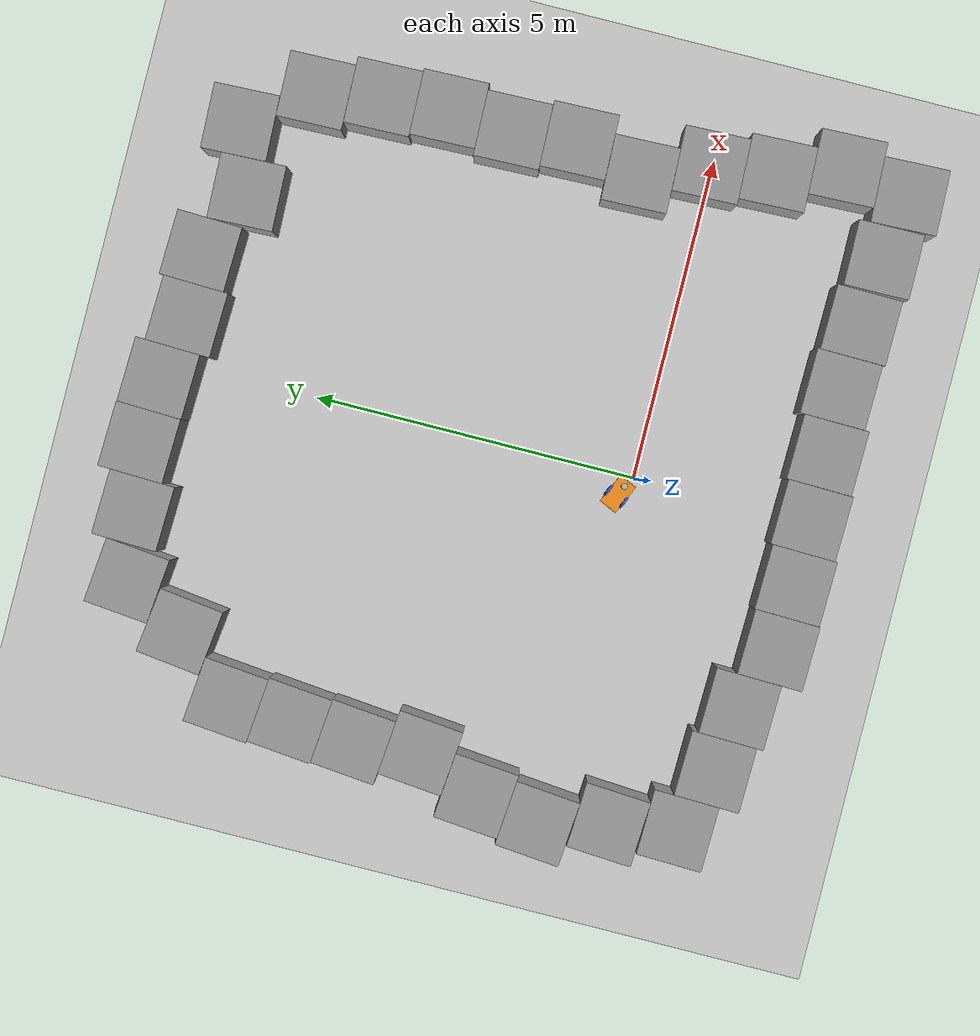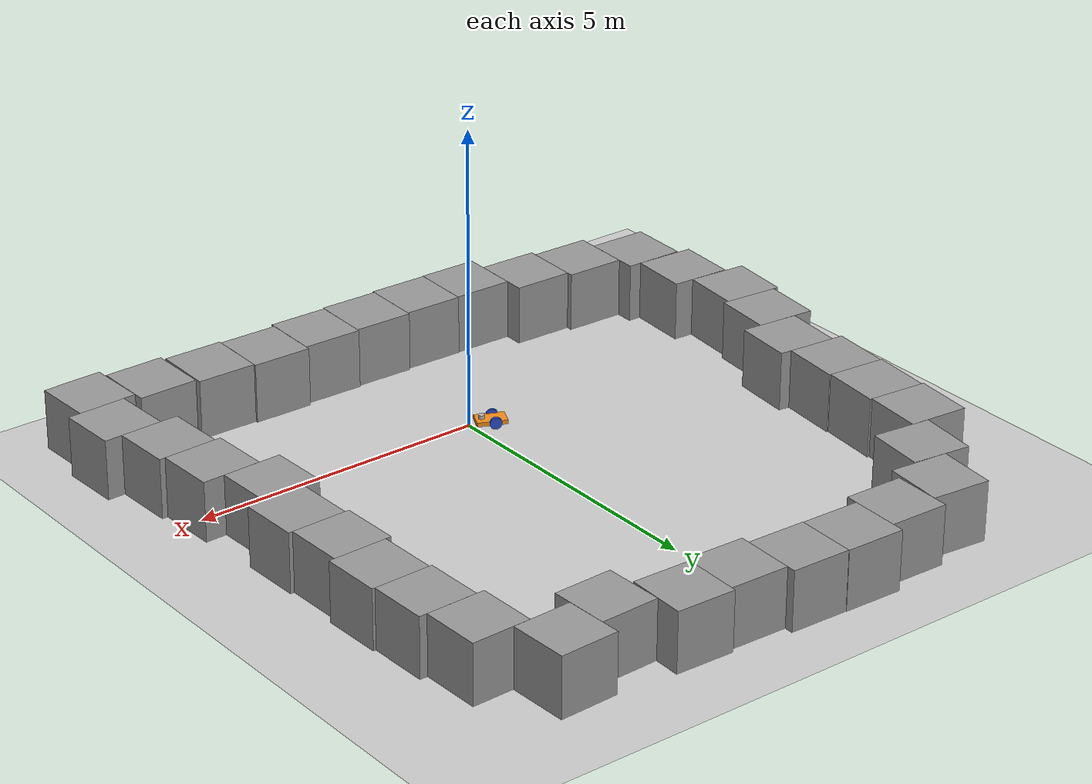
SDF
<sdf version="1.7">
 <world name="default">
  <light name="sun" type="directional">
   <pose>0 0 10 0 -0 0</pose>
   <diffuse>0.8 0.8 0.8 1</diffuse>
   <specular>0.2 0.2 0.2 1</specular>
   <attenuation>
    <range>1000</range>
    <constant>0.9</constant>
    <linear>0.01</linear>
    <quadratic>0.001</quadratic>
   </attenuation>
   <direction>-0.5 0.1 -0.9</direction>
   <spot><inner_angle>0</inner_angle><outer_angle>0</outer_angle><falloff>0</falloff></spot>
  </light>
  <model name="ground_plane">
   <static>1</static>
   <link name="link">
    <collision name="collision">
     <geometry><plane><normal>0 0 1</normal><size>100 100</size></plane></geometry>
     <surface>
      <contact><collide_bitmask>65535</collide_bitmask></contact>
      <friction><ode><mu>100</mu><mu2>50</mu2></ode></friction>
     </surface>
    </collision>
    <visual name="visual">
     <cast_shadows>0</cast_shadows>
     <geometry><plane><normal>0 0 1</normal><size>100 100</size></plane></geometry>
     <material>
      <script><uri>file://media/materials/scripts/gazebo.material</uri><name>Gazebo/Grey</name></script>
     </material>
    </visual>
   </link>
  </model>
  <gravity>0 0 -9.8</gravity>
  <magnetic_field>6e-06 2.3e-05 -4.2e-05</magnetic_field>
  <atmosphere type="adiabatic"/>
  <physics type="ode">
   <max_step_size>0.001</max_step_size>
   <real_time_factor>1</real_time_factor>
   <real_time_update_rate>1000</real_time_update_rate>
  </physics>
  <scene><ambient>0.4 0.4 0.4 1</ambient><background>0.7 0.7 0.7 1</background><shadows>1</shadows></scene>
  <spherical_coordinates>
   <surface_model>EARTH_WGS84</surface_model>
   <latitude_deg>0</latitude_deg>
   <longitude_deg>0</longitude_deg>
   <elevation>0</elevation>
   <heading_deg>0</heading_deg>
  </spherical_coordinates>
  <model name="myrobo">
   <link name="link_chassis">
    <inertial>
     <pose>0.025 0 0.091667 0 -0 0</pose>
     <mass>6</mass>
     <inertia>
      <ixx>0.0430833</ixx>
      <ixy>0</ixy>
      <ixz>0.00625</ixz>
      <iyy>0.1285</iyy>
      <iyz>0</iyz>
      <izz>0.126208</izz>
     </inertia>
    </inertial>
    <collision name="link_chassis_fixed_joint_lump__collision_chassis_collision">
     <geometry><box><size>0.5 0.3 0.07</size></box></geometry>
    </collision>
    <collision name="link_chassis_fixed_joint_lump__caster_front_collision_collision_1">
     <pose>0.35 0 -0.05 0 -0 0</pose>
     <geometry><sphere><radius>0.05</radius></sphere></geometry>
    </collision>
    <collision name="link_chassis_fixed_joint_lump__sensor_laser_collision_2">
     <pose>0.15 0 0.05 0 -0 0</pose>
     <geometry><cylinder><length>0.1</length><radius>0.05</radius></cylinder></geometry>
    </collision>
    <visual name="link_chassis_visual">
     <geometry><box><size>0.5 0.3 0.07</size></box></geometry>
     <material>
      <script><name>Gazebo/Orange</name><uri>file://media/materials/scripts/gazebo.material</uri></script>
     </material>
    </visual>
    <visual name="link_chassis_fixed_joint_lump__caster_front_visual_visual_1">
     <pose>0.2 0 -0.05 0 -0 0</pose>
     <geometry><sphere><radius>0.05</radius></sphere></geometry>
    </visual>
    <visual name="link_chassis_fixed_joint_lump__sensor_laser_visual_2">
     <pose>0.15 0 0.05 0 -0 0</pose>
     <geometry><cylinder><length>0.1</length><radius>0.05</radius></cylinder></geometry>
    </visual>
    <sensor name="head_hokuyo_sensor" type="ray">
     <visualize>1</visualize>
     <always_on>1</always_on>
     <update_rate>10</update_rate>
     <ray>
      <scan>
       <horizontal>
        <samples>10</samples>
        <resolution>1</resolution>
        <min_angle>-1.1781</min_angle>
        <max_angle>1.1781</max_angle>
       </horizontal>
       <vertical><samples>1</samples><min_angle>0</min_angle><max_angle>0</max_angle></vertical>
      </scan>
      <range><min>0.1</min><max>2</max><resolution>0.01</resolution></range>
      <noise><type>gaussian</type><mean>0</mean><stddev>0.01</stddev></noise>
     </ray>
     <plugin name="gazebo_ros_head_hokuyo_controller" filename="libgazebo_ros_laser.so">
      <topicName>/myrobo/laser_scan</topicName>
      <frameName>sensor_laser</frameName>
      <robotNamespace>/</robotNamespace>
     </plugin>
     <pose>0.15 0 0.05 0 -0 0</pose>
    </sensor>
   </link>
   <joint name="joint_left_wheel" type="revolute">
    <pose relative_to="link_chassis">-0.05 -0.15 0 0 -0 0</pose>
    <parent>link_chassis</parent>
    <child>link_left_wheel</child>
    <axis>
     <xyz>0 1 0</xyz>
     <limit><lower>-1e+16</lower><upper>1e+16</upper></limit>
     <dynamics><spring_reference>0</spring_reference><spring_stiffness>0</spring_stiffness></dynamics>
    </axis>
   </joint>
   <link name="link_left_wheel">
    <pose relative_to="joint_left_wheel">0 0 0 0 -0 0</pose>
    <inertial>
     <pose>0 0 0 -0 1.5707 1.5707</pose>
     <mass>0.2</mass>
     <inertia>
      <ixx>0.000526667</ixx>
      <ixy>0</ixy>
      <ixz>0</ixz>
      <iyy>0.000526667</iyy>
      <iyz>0</iyz>
      <izz>0.001</izz>
     </inertia>
    </inertial>
    <collision name="link_left_wheel_fixed_joint_lump__link_right_wheel_collision_collision">
     <pose>0 0 0 1.57089 1.57079 -3.14159</pose>
     <geometry><cylinder><length>0.04</length><radius>0.1</radius></cylinder></geometry>
    </collision>
    <visual name="link_left_wheel_visual_visual">
     <pose>0 0 0 1.57089 1.57079 -3.14159</pose>
     <geometry><cylinder><length>0.04</length><radius>0.1</radius></cylinder></geometry>
     <material>
      <script><name>Gazebo/Blue</name><uri>file://media/materials/scripts/gazebo.material</uri></script>
     </material>
    </visual>
   </link>
   <joint name="joint_right_wheel" type="revolute">
    <pose relative_to="link_chassis">-0.05 0.15 0 0 -0 0</pose>
    <parent>link_chassis</parent>
    <child>link_right_wheel</child>
    <axis>
     <xyz>0 1 0</xyz>
     <limit><lower>-1e+16</lower><upper>1e+16</upper></limit>
     <dynamics><spring_reference>0</spring_reference><spring_stiffness>0</spring_stiffness></dynamics>
    </axis>
   </joint>
   <link name="link_right_wheel">
    <pose relative_to="joint_right_wheel">0 0 0 0 -0 0</pose>
    <inertial>
     <pose>0 0 0 -0 1.5707 1.5707</pose>
     <mass>0.2</mass>
     <inertia>
      <ixx>0.000526667</ixx>
      <ixy>0</ixy>
      <ixz>0</ixz>
      <iyy>0.000526667</iyy>
      <iyz>0</iyz>
      <izz>0.001</izz>
     </inertia>
    </inertial>
    <collision name="link_right_wheel_collision_collision">
     <pose>0 0 0 1.57089 1.57079 -3.14159</pose>
     <geometry><cylinder><length>0.04</length><radius>0.1</radius></cylinder></geometry>
    </collision>
    <visual name="link_right_wheel_visual_visual">
     <pose>0 0 0 1.57089 1.57079 -3.14159</pose>
     <geometry><cylinder><length>0.04</length><radius>0.1</radius></cylinder></geometry>
     <material>
      <script><name>Gazebo/Blue</name><uri>file://media/materials/scripts/gazebo.material</uri></script>
     </material>
    </visual>
   </link>
   <static>0</static>
   <plugin name="differential_drive_controller" filename="libgazebo_ros_diff_drive.so">
    <alwaysOn>1</alwaysOn>
    <legacyMode>0</legacyMode>
    <updateRate>20</updateRate>
    <leftJoint>joint_left_wheel</leftJoint>
    <rightJoint>joint_right_wheel</rightJoint>
    <wheelSeparation>0.6</wheelSeparation>
    <wheelDiameter>0.2</wheelDiameter>
    <torque>0.1</torque>
    <commandTopic>cmd_vel</commandTopic>
    <odometryTopic>odom</odometryTopic>
    <odometryFrame>odom</odometryFrame>
    <publishOdomTF>1</publishOdomTF>
    <robotBaseFrame>link_chassis</robotBaseFrame>
    <publishTf>1</publishTf>
    <wheelAcceleration>0</wheelAcceleration>
    <wheelTorque>1</wheelTorque>
    <publishWheelTF>1</publishWheelTF>
    <robotNamespace>/</robotNamespace>
   </plugin>
   <pose>-0.286318 0.177923 0.099999 -4e-06 8e-06 -0.432792</pose>
  </model>
  <model name="unit_box">
   <pose>-5.17168 1.15338 0.5 0 -0 -0.091626</pose>
   <link name="link">
    <inertial>
     <mass>1</mass>
     <inertia>
      <ixx>0.166667</ixx>
      <ixy>0</ixy>
      <ixz>0</ixz>
      <iyy>0.166667</iyy>
      <iyz>0</iyz>
      <izz>0.166667</izz>
     </inertia>
    </inertial>
    <collision name="collision"><geometry><box><size>1 1 1</size></box></geometry></collision>
    <visual name="visual">
     <geometry><box><size>1 1 1</size></box></geometry>
     <material>
      <script><name>Gazebo/Grey</name><uri>file://media/materials/scripts/gazebo.material</uri></script>
     </material>
    </visual>
   </link>
  </model>
  <model name="unit_box_0">
   <pose>-4.75522 2.12006 0.5 -0 -0 -0.095774</pose>
   <link name="link">
    <inertial>
     <mass>1</mass>
     <inertia>
      <ixx>0.166667</ixx>
      <ixy>0</ixy>
      <ixz>0</ixz>
      <iyy>0.166667</iyy>
      <iyz>0</iyz>
      <izz>0.166667</izz>
     </inertia>
    </inertial>
    <collision name="collision"><geometry><box><size>1 1 1</size></box></geometry></collision>
    <visual name="visual">
     <geometry><box><size>1 1 1</size></box></geometry>
     <material>
      <script><name>Gazebo/Grey</name><uri>file://media/materials/scripts/gazebo.material</uri></script>
     </material>
    </visual>
   </link>
  </model>
  <model name="unit_box_1">
   <pose>-4.84401 3.1332 0.5 0 0 -0.095783</pose>
   <link name="link">
    <inertial>
     <mass>1</mass>
     <inertia>
      <ixx>0.166667</ixx>
      <ixy>0</ixy>
      <ixz>0</ixz>
      <iyy>0.166667</iyy>
      <iyz>0</iyz>
      <izz>0.166667</izz>
     </inertia>
    </inertial>
    <collision name="collision"><geometry><box><size>1 1 1</size></box></geometry></collision>
    <visual name="visual">
     <geometry><box><size>1 1 1</size></box></geometry>
     <material>
      <script><name>Gazebo/Grey</name><uri>file://media/materials/scripts/gazebo.material</uri></script>
     </material>
    </visual>
   </link>
  </model>
  <model name="unit_box_2">
   <pose>-4.77036 4.13076 0.5 0 0 -0.095844</pose>
   <link name="link">
    <inertial>
     <mass>1</mass>
     <inertia>
      <ixx>0.166667</ixx>
      <ixy>0</ixy>
      <ixz>0</ixz>
      <iyy>0.166667</iyy>
      <iyz>0</iyz>
      <izz>0.166667</izz>
     </inertia>
    </inertial>
    <collision name="collision"><geometry><box><size>1 1 1</size></box></geometry></collision>
    <visual name="visual">
     <geometry><box><size>1 1 1</size></box></geometry>
     <material>
      <script><name>Gazebo/Grey</name><uri>file://media/materials/scripts/gazebo.material</uri></script>
     </material>
    </visual>
   </link>
  </model>
  <model name="unit_box_3">
   <pose>-4.70687 5.12927 0.5 0 0 -0.095847</pose>
   <link name="link">
    <inertial>
     <mass>1</mass>
     <inertia>
      <ixx>0.166667</ixx>
      <ixy>0</ixy>
      <ixz>0</ixz>
      <iyy>0.166667</iyy>
      <iyz>0</iyz>
      <izz>0.166667</izz>
     </inertia>
    </inertial>
    <collision name="collision"><geometry><box><size>1 1 1</size></box></geometry></collision>
    <visual name="visual">
     <geometry><box><size>1 1 1</size></box></geometry>
     <material>
      <script><name>Gazebo/Grey</name><uri>file://media/materials/scripts/gazebo.material</uri></script>
     </material>
    </visual>
   </link>
  </model>
  <model name="unit_box_4">
   <pose>-3.88865 6.04913 0.499995 -0 -1e-05 -0.123498</pose>
   <link name="link">
    <inertial>
     <mass>1</mass>
     <inertia>
      <ixx>0.166667</ixx>
      <ixy>0</ixy>
      <ixz>0</ixz>
      <iyy>0.166667</iyy>
      <iyz>0</iyz>
      <izz>0.166667</izz>
     </inertia>
    </inertial>
    <collision name="collision"><geometry><box><size>1 1 1</size></box></geometry></collision>
    <visual name="visual">
     <geometry><box><size>1 1 1</size></box></geometry>
     <material>
      <script><name>Gazebo/Grey</name><uri>file://media/materials/scripts/gazebo.material</uri></script>
     </material>
    </visual>
   </link>
  </model>
  <model name="unit_box_5">
   <pose>-3.34251 7.00156 0.5 0 0 -0.098276</pose>
   <link name="link">
    <inertial>
     <mass>1</mass>
     <inertia>
      <ixx>0.166667</ixx>
      <ixy>0</ixy>
      <ixz>0</ixz>
      <iyy>0.166667</iyy>
      <iyz>0</iyz>
      <izz>0.166667</izz>
     </inertia>
    </inertial>
    <collision name="collision"><geometry><box><size>1 1 1</size></box></geometry></collision>
    <visual name="visual">
     <geometry><box><size>1 1 1</size></box></geometry>
     <material>
      <script><name>Gazebo/Grey</name><uri>file://media/materials/scripts/gazebo.material</uri></script>
     </material>
    </visual>
   </link>
  </model>
  <model name="unit_box_6">
   <pose>-2.30503 7.16888 0.499995 0 1e-05 -0.033636</pose>
   <link name="link">
    <inertial>
     <mass>1</mass>
     <inertia>
      <ixx>0.166667</ixx>
      <ixy>0</ixy>
      <ixz>0</ixz>
      <iyy>0.166667</iyy>
      <iyz>0</iyz>
      <izz>0.166667</izz>
     </inertia>
    </inertial>
    <collision name="collision"><geometry><box><size>1 1 1</size></box></geometry></collision>
    <visual name="visual">
     <geometry><box><size>1 1 1</size></box></geometry>
     <material>
      <script><name>Gazebo/Grey</name><uri>file://media/materials/scripts/gazebo.material</uri></script>
     </material>
    </visual>
   </link>
  </model>
  <model name="unit_box_7">
   <pose>-1.29895 7.33057 0.499995 0 -1e-05 -0.033381</pose>
   <link name="link">
    <inertial>
     <mass>1</mass>
     <inertia>
      <ixx>0.166667</ixx>
      <ixy>0</ixy>
      <ixz>0</ixz>
      <iyy>0.166667</iyy>
      <iyz>0</iyz>
      <izz>0.166667</izz>
     </inertia>
    </inertial>
    <collision name="collision"><geometry><box><size>1 1 1</size></box></geometry></collision>
    <visual name="visual">
     <geometry><box><size>1 1 1</size></box></geometry>
     <material>
      <script><name>Gazebo/Grey</name><uri>file://media/materials/scripts/gazebo.material</uri></script>
     </material>
    </visual>
   </link>
  </model>
  <model name="unit_box_8">
   <pose>-0.299756 7.28887 0.5 0 0 -0.033333</pose>
   <link name="link">
    <inertial>
     <mass>1</mass>
     <inertia>
      <ixx>0.166667</ixx>
      <ixy>0</ixy>
      <ixz>0</ixz>
      <iyy>0.166667</iyy>
      <iyz>0</iyz>
      <izz>0.166667</izz>
     </inertia>
    </inertial>
    <collision name="collision"><geometry><box><size>1 1 1</size></box></geometry></collision>
    <visual name="visual">
     <geometry><box><size>1 1 1</size></box></geometry>
     <material>
      <script><name>Gazebo/Grey</name><uri>file://media/materials/scripts/gazebo.material</uri></script>
     </material>
    </visual>
   </link>
  </model>
  <model name="unit_box_9">
   <pose>0.694834 7.10982 0.5 0 0 -0.03333</pose>
   <link name="link">
    <inertial>
     <mass>1</mass>
     <inertia>
      <ixx>0.166667</ixx>
      <ixy>0</ixy>
      <ixz>0</ixz>
      <iyy>0.166667</iyy>
      <iyz>0</iyz>
      <izz>0.166667</izz>
     </inertia>
    </inertial>
    <collision name="collision"><geometry><box><size>1 1 1</size></box></geometry></collision>
    <visual name="visual">
     <geometry><box><size>1 1 1</size></box></geometry>
     <material>
      <script><name>Gazebo/Grey</name><uri>file://media/materials/scripts/gazebo.material</uri></script>
     </material>
    </visual>
   </link>
  </model>
  <model name="unit_box_10">
   <pose>1.6966 7.14621 0.5 0 0 -0.033327</pose>
   <link name="link">
    <inertial>
     <mass>1</mass>
     <inertia>
      <ixx>0.166667</ixx>
      <ixy>0</ixy>
      <ixz>0</ixz>
      <iyy>0.166667</iyy>
      <iyz>0</iyz>
      <izz>0.166667</izz>
     </inertia>
    </inertial>
    <collision name="collision"><geometry><box><size>1 1 1</size></box></geometry></collision>
    <visual name="visual">
     <geometry><box><size>1 1 1</size></box></geometry>
     <material>
      <script><name>Gazebo/Grey</name><uri>file://media/materials/scripts/gazebo.material</uri></script>
     </material>
    </visual>
   </link>
  </model>
  <model name="unit_box_11">
   <pose>-5.34822 0.165385 0.499999 0 2e-06 -0.091626</pose>
   <link name="link">
    <inertial>
     <mass>1</mass>
     <inertia>
      <ixx>0.166667</ixx>
      <ixy>0</ixy>
      <ixz>0</ixz>
      <iyy>0.166667</iyy>
      <iyz>0</iyz>
      <izz>0.166667</izz>
     </inertia>
    </inertial>
    <collision name="collision"><geometry><box><size>1 1 1</size></box></geometry></collision>
    <visual name="visual">
     <geometry><box><size>1 1 1</size></box></geometry>
     <material>
      <script><name>Gazebo/Grey</name><uri>file://media/materials/scripts/gazebo.material</uri></script>
     </material>
    </visual>
   </link>
  </model>
  <model name="unit_box_12">
   <pose>-5.09663 -0.866579 0.499996 0 -9e-06 -0.063196</pose>
   <link name="link">
    <inertial>
     <mass>1</mass>
     <inertia>
      <ixx>0.166667</ixx>
      <ixy>0</ixy>
      <ixz>0</ixz>
      <iyy>0.166667</iyy>
      <iyz>0</iyz>
      <izz>0.166667</izz>
     </inertia>
    </inertial>
    <collision name="collision"><geometry><box><size>1 1 1</size></box></geometry></collision>
    <visual name="visual">
     <geometry><box><size>1 1 1</size></box></geometry>
     <material>
      <script><name>Gazebo/Grey</name><uri>file://media/materials/scripts/gazebo.material</uri></script>
     </material>
    </visual>
   </link>
  </model>
  <model name="unit_box_13">
   <pose>-4.93177 -1.88836 0.499995 -1e-05 -0 -0.029773</pose>
   <link name="link">
    <inertial>
     <mass>1</mass>
     <inertia>
      <ixx>0.166667</ixx>
      <ixy>0</ixy>
      <ixz>0</ixz>
      <iyy>0.166667</iyy>
      <iyz>0</iyz>
      <izz>0.166667</izz>
     </inertia>
    </inertial>
    <collision name="collision"><geometry><box><size>1 1 1</size></box></geometry></collision>
    <visual name="visual">
     <geometry><box><size>1 1 1</size></box></geometry>
     <material>
      <script><name>Gazebo/Grey</name><uri>file://media/materials/scripts/gazebo.material</uri></script>
     </material>
    </visual>
   </link>
  </model>
  <model name="unit_box_14">
   <pose>-3.94004 -2.21727 0.499997 6e-06 -0 -0.027617</pose>
   <link name="link">
    <inertial>
     <mass>1</mass>
     <inertia>
      <ixx>0.166667</ixx>
      <ixy>0</ixy>
      <ixz>0</ixz>
      <iyy>0.166667</iyy>
      <iyz>0</iyz>
      <izz>0.166667</izz>
     </inertia>
    </inertial>
    <collision name="collision"><geometry><box><size>1 1 1</size></box></geometry></collision>
    <visual name="visual">
     <geometry><box><size>1 1 1</size></box></geometry>
     <material>
      <script><name>Gazebo/Grey</name><uri>file://media/materials/scripts/gazebo.material</uri></script>
     </material>
    </visual>
   </link>
  </model>
  <model name="unit_box_15">
   <pose>-2.94315 -2.3436 0.5 -0 -0 -0.027618</pose>
   <link name="link">
    <inertial>
     <mass>1</mass>
     <inertia>
      <ixx>0.166667</ixx>
      <ixy>0</ixy>
      <ixz>0</ixz>
      <iyy>0.166667</iyy>
      <iyz>0</iyz>
      <izz>0.166667</izz>
     </inertia>
    </inertial>
    <collision name="collision"><geometry><box><size>1 1 1</size></box></geometry></collision>
    <visual name="visual">
     <geometry><box><size>1 1 1</size></box></geometry>
     <material>
      <script><name>Gazebo/Grey</name><uri>file://media/materials/scripts/gazebo.material</uri></script>
     </material>
    </visual>
   </link>
  </model>
  <model name="unit_box_16">
   <pose>-1.95148 -2.68545 0.49999 0 -0 -0.02615</pose>
   <link name="link">
    <inertial>
     <mass>1</mass>
     <inertia>
      <ixx>0.166667</ixx>
      <ixy>0</ixy>
      <ixz>0</ixz>
      <iyy>0.166667</iyy>
      <iyz>0</iyz>
      <izz>0.166667</izz>
     </inertia>
    </inertial>
    <collision name="collision"><geometry><box><size>1 1 1</size></box></geometry></collision>
    <visual name="visual">
     <geometry><box><size>1 1 1</size></box></geometry>
     <material>
      <script><name>Gazebo/Grey</name><uri>file://media/materials/scripts/gazebo.material</uri></script>
     </material>
    </visual>
   </link>
  </model>
  <model name="unit_box_17">
   <pose>-0.951216 -2.6973 0.49998 0 -0 -0.025674</pose>
   <link name="link">
    <inertial>
     <mass>1</mass>
     <inertia>
      <ixx>0.166667</ixx>
      <ixy>0</ixy>
      <ixz>0</ixz>
      <iyy>0.166667</iyy>
      <iyz>0</iyz>
      <izz>0.166667</izz>
     </inertia>
    </inertial>
    <collision name="collision"><geometry><box><size>1 1 1</size></box></geometry></collision>
    <visual name="visual">
     <geometry><box><size>1 1 1</size></box></geometry>
     <material>
      <script><name>Gazebo/Grey</name><uri>file://media/materials/scripts/gazebo.material</uri></script>
     </material>
    </visual>
   </link>
  </model>
  <model name="unit_box_18">
   <pose>0.049488 -2.68718 0.499996 -0 -7e-06 -0.025419</pose>
   <link name="link">
    <inertial>
     <mass>1</mass>
     <inertia>
      <ixx>0.166667</ixx>
      <ixy>0</ixy>
      <ixz>0</ixz>
      <iyy>0.166667</iyy>
      <iyz>0</iyz>
      <izz>0.166667</izz>
     </inertia>
    </inertial>
    <collision name="collision"><geometry><box><size>1 1 1</size></box></geometry></collision>
    <visual name="visual">
     <geometry><box><size>1 1 1</size></box></geometry>
     <material>
      <script><name>Gazebo/Grey</name><uri>file://media/materials/scripts/gazebo.material</uri></script>
     </material>
    </visual>
   </link>
  </model>
  <model name="unit_box_19">
   <pose>1.0514 -2.678 0.5 0 -0 -0.022515</pose>
   <link name="link">
    <inertial>
     <mass>1</mass>
     <inertia>
      <ixx>0.166667</ixx>
      <ixy>0</ixy>
      <ixz>0</ixz>
      <iyy>0.166667</iyy>
      <iyz>0</iyz>
      <izz>0.166667</izz>
     </inertia>
    </inertial>
    <collision name="collision"><geometry><box><size>1 1 1</size></box></geometry></collision>
    <visual name="visual">
     <geometry><box><size>1 1 1</size></box></geometry>
     <material>
      <script><name>Gazebo/Grey</name><uri>file://media/materials/scripts/gazebo.material</uri></script>
     </material>
    </visual>
   </link>
  </model>
  <model name="unit_box_20">
   <pose>2.05415 -2.62792 0.5 -0 -0 -0.019335</pose>
   <link name="link">
    <inertial>
     <mass>1</mass>
     <inertia>
      <ixx>0.166667</ixx>
      <ixy>0</ixy>
      <ixz>0</ixz>
      <iyy>0.166667</iyy>
      <iyz>0</iyz>
      <izz>0.166667</izz>
     </inertia>
    </inertial>
    <collision name="collision"><geometry><box><size>1 1 1</size></box></geometry></collision>
    <visual name="visual">
     <geometry><box><size>1 1 1</size></box></geometry>
     <material>
      <script><name>Gazebo/Grey</name><uri>file://media/materials/scripts/gazebo.material</uri></script>
     </material>
    </visual>
   </link>
  </model>
  <model name="unit_box_21">
   <pose>3.05456 -2.68429 0.5 -0 -0 -0.016708</pose>
   <link name="link">
    <inertial>
     <mass>1</mass>
     <inertia>
      <ixx>0.166667</ixx>
      <ixy>0</ixy>
      <ixz>0</ixz>
      <iyy>0.166667</iyy>
      <iyz>0</iyz>
      <izz>0.166667</izz>
     </inertia>
    </inertial>
    <collision name="collision"><geometry><box><size>1 1 1</size></box></geometry></collision>
    <visual name="visual">
     <geometry><box><size>1 1 1</size></box></geometry>
     <material>
      <script><name>Gazebo/Grey</name><uri>file://media/materials/scripts/gazebo.material</uri></script>
     </material>
    </visual>
   </link>
  </model>
  <model name="unit_box_22">
   <pose>4.08233 -2.7713 0.5 0 -0 0.007689</pose>
   <link name="link">
    <inertial>
     <mass>1</mass>
     <inertia>
      <ixx>0.166667</ixx>
      <ixy>0</ixy>
      <ixz>0</ixz>
      <iyy>0.166667</iyy>
      <iyz>0</iyz>
      <izz>0.166667</izz>
     </inertia>
    </inertial>
    <collision name="collision"><geometry><box><size>1 1 1</size></box></geometry></collision>
    <visual name="visual">
     <geometry><box><size>1 1 1</size></box></geometry>
     <material>
      <script><name>Gazebo/Grey</name><uri>file://media/materials/scripts/gazebo.material</uri></script>
     </material>
    </visual>
   </link>
  </model>
  <model name="unit_box_23">
   <pose>5.09624 -2.91842 0.5 0 -0 0.032479</pose>
   <link name="link">
    <inertial>
     <mass>1</mass>
     <inertia>
      <ixx>0.166667</ixx>
      <ixy>0</ixy>
      <ixz>0</ixz>
      <iyy>0.166667</iyy>
      <iyz>0</iyz>
      <izz>0.166667</izz>
     </inertia>
    </inertial>
    <collision name="collision"><geometry><box><size>1 1 1</size></box></geometry></collision>
    <visual name="visual">
     <geometry><box><size>1 1 1</size></box></geometry>
     <material>
      <script><name>Gazebo/Grey</name><uri>file://media/materials/scripts/gazebo.material</uri></script>
     </material>
    </visual>
   </link>
  </model>
  <model name="unit_box_24">
   <pose>2.71347 6.69825 0.499995 0 1e-05 0.031085</pose>
   <link name="link">
    <inertial>
     <mass>1</mass>
     <inertia>
      <ixx>0.166667</ixx>
      <ixy>0</ixy>
      <ixz>0</ixz>
      <iyy>0.166667</iyy>
      <iyz>0</iyz>
      <izz>0.166667</izz>
     </inertia>
    </inertial>
    <collision name="collision"><geometry><box><size>1 1 1</size></box></geometry></collision>
    <visual name="visual">
     <geometry><box><size>1 1 1</size></box></geometry>
     <material>
      <script><name>Gazebo/Grey</name><uri>file://media/materials/scripts/gazebo.material</uri></script>
     </material>
    </visual>
   </link>
  </model>
  <model name="unit_box_25">
   <pose>3.70461 7.04977 0.499995 0 1e-05 0.036725</pose>
   <link name="link">
    <inertial>
     <mass>1</mass>
     <inertia>
      <ixx>0.166667</ixx>
      <ixy>0</ixy>
      <ixz>0</ixz>
      <iyy>0.166667</iyy>
      <iyz>0</iyz>
      <izz>0.166667</izz>
     </inertia>
    </inertial>
    <collision name="collision"><geometry><box><size>1 1 1</size></box></geometry></collision>
    <visual name="visual">
     <geometry><box><size>1 1 1</size></box></geometry>
     <material>
      <script><name>Gazebo/Grey</name><uri>file://media/materials/scripts/gazebo.material</uri></script>
     </material>
    </visual>
   </link>
  </model>
  <model name="unit_box_26">
   <pose>4.43782 6.06849 0.5 0 -0 0.023833</pose>
   <link name="link">
    <inertial>
     <mass>1</mass>
     <inertia>
      <ixx>0.166667</ixx>
      <ixy>0</ixy>
      <ixz>0</ixz>
      <iyy>0.166667</iyy>
      <iyz>0</iyz>
      <izz>0.166667</izz>
     </inertia>
    </inertial>
    <collision name="collision"><geometry><box><size>1 1 1</size></box></geometry></collision>
    <visual name="visual">
     <geometry><box><size>1 1 1</size></box></geometry>
     <material>
      <script><name>Gazebo/Grey</name><uri>file://media/materials/scripts/gazebo.material</uri></script>
     </material>
    </visual>
   </link>
  </model>
  <model name="unit_box_27">
   <pose>4.59284 5.07137 0.499995 1e-05 -0 0.025181</pose>
   <link name="link">
    <inertial>
     <mass>1</mass>
     <inertia>
      <ixx>0.166667</ixx>
      <ixy>0</ixy>
      <ixz>0</ixz>
      <iyy>0.166667</iyy>
      <iyz>0</iyz>
      <izz>0.166667</izz>
     </inertia>
    </inertial>
    <collision name="collision"><geometry><box><size>1 1 1</size></box></geometry></collision>
    <visual name="visual">
     <geometry><box><size>1 1 1</size></box></geometry>
     <material>
      <script><name>Gazebo/Grey</name><uri>file://media/materials/scripts/gazebo.material</uri></script>
     </material>
    </visual>
   </link>
  </model>
  <model name="unit_box_28">
   <pose>4.663 4.07274 0.499985 -0 1e-05 0.025026</pose>
   <link name="link">
    <inertial>
     <mass>1</mass>
     <inertia>
      <ixx>0.166667</ixx>
      <ixy>0</ixy>
      <ixz>0</ixz>
      <iyy>0.166667</iyy>
      <iyz>0</iyz>
      <izz>0.166667</izz>
     </inertia>
    </inertial>
    <collision name="collision"><geometry><box><size>1 1 1</size></box></geometry></collision>
    <visual name="visual">
     <geometry><box><size>1 1 1</size></box></geometry>
     <material>
      <script><name>Gazebo/Grey</name><uri>file://media/materials/scripts/gazebo.material</uri></script>
     </material>
    </visual>
   </link>
  </model>
  <model name="unit_box_29">
   <pose>4.59168 3.07062 0.5 0 -0 0.025017</pose>
   <link name="link">
    <inertial>
     <mass>1</mass>
     <inertia>
      <ixx>0.166667</ixx>
      <ixy>0</ixy>
      <ixz>0</ixz>
      <iyy>0.166667</iyy>
      <iyz>0</iyz>
      <izz>0.166667</izz>
     </inertia>
    </inertial>
    <collision name="collision"><geometry><box><size>1 1 1</size></box></geometry></collision>
    <visual name="visual">
     <geometry><box><size>1 1 1</size></box></geometry>
     <material>
      <script><name>Gazebo/Grey</name><uri>file://media/materials/scripts/gazebo.material</uri></script>
     </material>
    </visual>
   </link>
  </model>
  <model name="unit_box_30">
   <pose>4.68383 2.07259 0.499711 0 1e-05 0.025051</pose>
   <link name="link">
    <inertial>
     <mass>1</mass>
     <inertia>
      <ixx>0.166667</ixx>
      <ixy>0</ixy>
      <ixz>0</ixz>
      <iyy>0.166667</iyy>
      <iyz>0</iyz>
      <izz>0.166667</izz>
     </inertia>
    </inertial>
    <collision name="collision"><geometry><box><size>1 1 1</size></box></geometry></collision>
    <visual name="visual">
     <geometry><box><size>1 1 1</size></box></geometry>
     <material>
      <script><name>Gazebo/Grey</name><uri>file://media/materials/scripts/gazebo.material</uri></script>
     </material>
    </visual>
   </link>
  </model>
  <model name="unit_box_31">
   <pose>4.4267 1.06354 0.5 0 -0 0.029642</pose>
   <link name="link">
    <inertial>
     <mass>1</mass>
     <inertia>
      <ixx>0.166667</ixx>
      <ixy>0</ixy>
      <ixz>0</ixz>
      <iyy>0.166667</iyy>
      <iyz>0</iyz>
      <izz>0.166667</izz>
     </inertia>
    </inertial>
    <collision name="collision"><geometry><box><size>1 1 1</size></box></geometry></collision>
    <visual name="visual">
     <geometry><box><size>1 1 1</size></box></geometry>
     <material>
      <script><name>Gazebo/Grey</name><uri>file://media/materials/scripts/gazebo.material</uri></script>
     </material>
    </visual>
   </link>
  </model>
  <model name="unit_box_32">
   <pose>4.81817 0.074317 0.499971 0 -0 0.032372</pose>
   <link name="link">
    <inertial>
     <mass>1</mass>
     <inertia>
      <ixx>0.166667</ixx>
      <ixy>0</ixy>
      <ixz>0</ixz>
      <iyy>0.166667</iyy>
      <iyz>0</iyz>
      <izz>0.166667</izz>
     </inertia>
    </inertial>
    <collision name="collision"><geometry><box><size>1 1 1</size></box></geometry></collision>
    <visual name="visual">
     <geometry><box><size>1 1 1</size></box></geometry>
     <material>
      <script><name>Gazebo/Grey</name><uri>file://media/materials/scripts/gazebo.material</uri></script>
     </material>
    </visual>
   </link>
  </model>
  <model name="unit_box_33">
   <pose>4.94646 -0.92213 0.5 0 -0 0.03243</pose>
   <link name="link">
    <inertial>
     <mass>1</mass>
     <inertia>
      <ixx>0.166667</ixx>
      <ixy>0</ixy>
      <ixz>0</ixz>
      <iyy>0.166667</iyy>
      <iyz>0</iyz>
      <izz>0.166667</izz>
     </inertia>
    </inertial>
    <collision name="collision"><geometry><box><size>1 1 1</size></box></geometry></collision>
    <visual name="visual">
     <geometry><box><size>1 1 1</size></box></geometry>
     <material>
      <script><name>Gazebo/Grey</name><uri>file://media/materials/scripts/gazebo.material</uri></script>
     </material>
    </visual>
   </link>
  </model>
  <model name="unit_box_34">
   <pose>5.2734 -1.91205 0.5 0 -0 0.032431</pose>
   <link name="link">
    <inertial>
     <mass>1</mass>
     <inertia>
      <ixx>0.166667</ixx>
      <ixy>0</ixy>
      <ixz>0</ixz>
      <iyy>0.166667</iyy>
      <iyz>0</iyz>
      <izz>0.166667</izz>
     </inertia>
    </inertial>
    <collision name="collision"><geometry><box><size>1 1 1</size></box></geometry></collision>
    <visual name="visual">
     <geometry><box><size>1 1 1</size></box></geometry>
     <material>
      <script><name>Gazebo/Grey</name><uri>file://media/materials/scripts/gazebo.material</uri></script>
     </material>
    </visual>
   </link>
  </model>
 </world>
</sdf>
